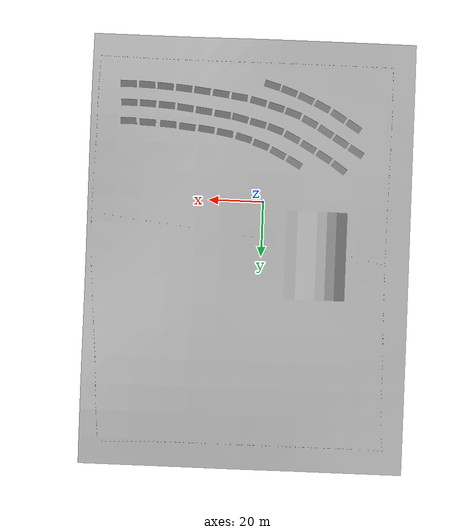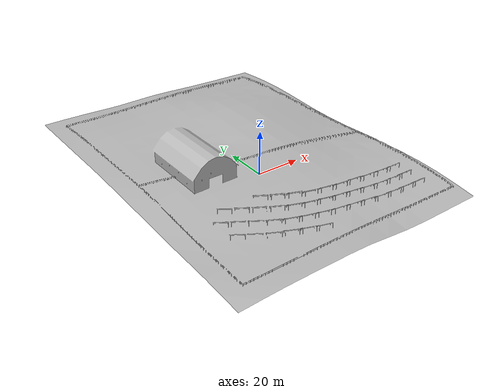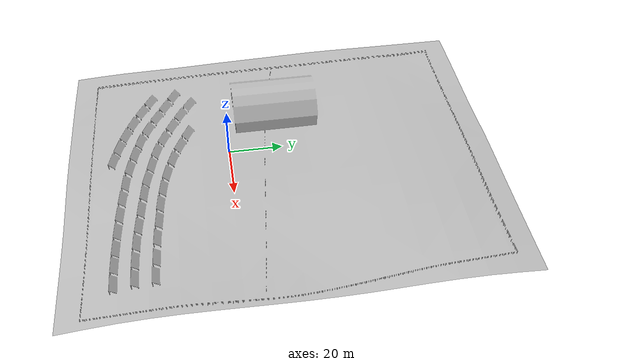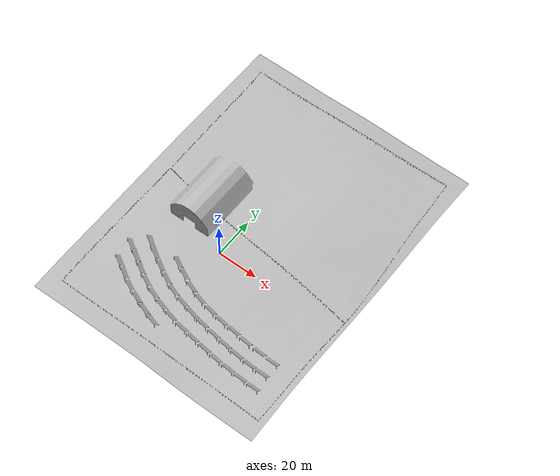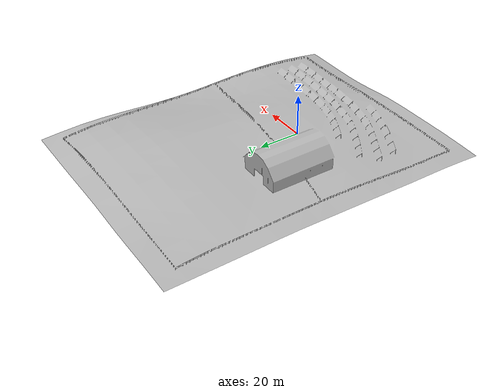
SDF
<sdf version="1.7">
 <world name="default">
  <light name="sun" type="directional">
   <pose>0 0 10 0 -0 0</pose>
   <diffuse>0.8 0.8 0.8 1</diffuse>
   <specular>0.2 0.2 0.2 1</specular>
   <attenuation>
    <range>1000</range>
    <constant>0.9</constant>
    <linear>0.01</linear>
    <quadratic>0.001</quadratic>
   </attenuation>
   <direction>-0.5 0.1 -0.9</direction>
   <spot><inner_angle>0</inner_angle><outer_angle>0</outer_angle><falloff>0</falloff></spot>
  </light>
  <gravity>0 0 -9.8</gravity>
  <magnetic_field>6e-06 2.3e-05 -4.2e-05</magnetic_field>
  <atmosphere type="adiabatic"/>
  <physics type="ode">
   <max_step_size>0.001</max_step_size>
   <real_time_factor>1</real_time_factor>
   <real_time_update_rate>1000</real_time_update_rate>
  </physics>
  <scene><ambient>0.4 0.4 0.4 1</ambient><background>0.7 0.7 0.7 1</background><shadows>1</shadows></scene>
  <spherical_coordinates>
   <surface_model>EARTH_WGS84</surface_model>
   <latitude_deg>0</latitude_deg>
   <longitude_deg>0</longitude_deg>
   <elevation>0</elevation>
   <heading_deg>0</heading_deg>
  </spherical_coordinates>
  <model name="agriculture_geom">
   <link name="agriculture_world_link">
    <inertial>
     <mass>1</mass>
     <inertia><ixx>1</ixx><ixy>0</ixy><ixz>0</ixz><iyy>1</iyy><iyz>0</iyz><izz>1</izz></inertia>
    </inertial>
    <collision name="agriculture_world_link_collision">
     <geometry>
      <mesh><scale>1 1 1</scale><uri>model://cpr_agriculture/meshes/agriculture_world.dae</uri></mesh>
     </geometry>
    </collision>
    <visual name="agriculture_world_link_visual">
     <geometry>
      <mesh><scale>1 1 1</scale><uri>model://cpr_agriculture/meshes/agriculture_world.dae</uri></mesh>
     </geometry>
    </visual>
   </link>
   <static>1</static>
   <pose>-18.4747 -1.31369 0 0 -0 0</pose>
  </model>
 </world>
</sdf>
